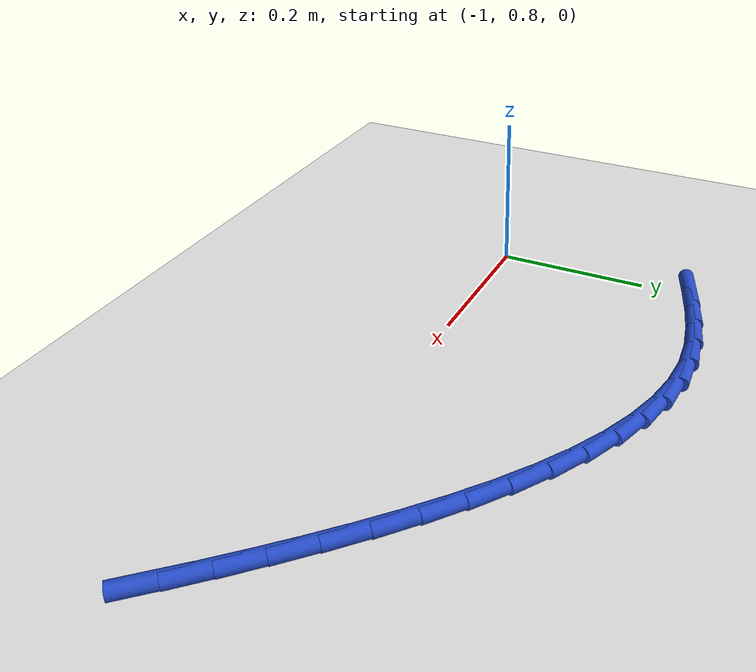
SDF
<sdf version="1.6">
 <world name="default">
  <model name="ground_plane">
   <static>1</static>
   <link name="link">
    <collision name="collision">
     <geometry><plane><normal>0 0 1</normal><size>100 100</size></plane></geometry>
     <surface><friction><ode><mu>100</mu><mu2>50</mu2></ode></friction></surface>
    </collision>
    <visual name="visual">
     <cast_shadows>0</cast_shadows>
     <geometry><plane><normal>0 0 1</normal><size>100 100</size></plane></geometry>
     <material>
      <script><uri>file://media/materials/scripts/gazebo.material</uri><name>Gazebo/WhiteGlow</name></script>
     </material>
    </visual>
   </link>
  </model>
  <model name="line">
   <link name="link_18">
    <pose>-0.2986528143183197 0.7411183380993126 0.01 0 1.57 -0.854984877392644</pose>
    <collision name="collision">
     <geometry><cylinder><radius>0.01</radius><length>0.08</length></cylinder></geometry>
    </collision>
    <visual name="visual">
     <material>
      <script><name>Gazebo/Blue</name><uri>file://media/materials/scripts/gazebo.material</uri></script>
     </material>
     <geometry><cylinder><radius>0.01</radius><length>0.08</length></cylinder></geometry>
    </visual>
   </link>
   <link name="link_19">
    <pose>-0.32948459297928206 0.7765700247198306 0.01 0 1.57 -0.8318791984274541</pose>
    <collision name="collision">
     <geometry><cylinder><radius>0.01</radius><length>0.08</length></cylinder></geometry>
    </collision>
    <visual name="visual">
     <material>
      <script><name>Gazebo/Blue</name><uri>file://media/materials/scripts/gazebo.material</uri></script>
     </material>
     <geometry><cylinder><radius>0.01</radius><length>0.08</length></cylinder></geometry>
    </visual>
   </link>
   <link name="link_20">
    <pose>-0.361604823893861 0.811824142319717 0.01 0 1.57 -0.8109976034258556</pose>
    <collision name="collision">
     <geometry><cylinder><radius>0.01</radius><length>0.08</length></cylinder></geometry>
    </collision>
    <visual name="visual">
     <material>
      <script><name>Gazebo/Blue</name><uri>file://media/materials/scripts/gazebo.material</uri></script>
     </material>
     <geometry><cylinder><radius>0.01</radius><length>0.08</length></cylinder></geometry>
    </visual>
   </link>
   <link name="link_21">
    <pose>-0.3949863238192327 0.8469600323115121 0.01 0 1.57 -0.7903148346299953</pose>
    <collision name="collision">
     <geometry><cylinder><radius>0.01</radius><length>0.08</length></cylinder></geometry>
    </collision>
    <visual name="visual">
     <material>
      <script><name>Gazebo/Blue</name><uri>file://media/materials/scripts/gazebo.material</uri></script>
     </material>
     <geometry><cylinder><radius>0.01</radius><length>0.08</length></cylinder></geometry>
    </visual>
   </link>
   <link name="link_22">
    <pose>-0.4295884818337437 0.8819041291519079 0.01 0 1.57 -0.7642693965937991</pose>
    <collision name="collision">
     <geometry><cylinder><radius>0.01</radius><length>0.08</length></cylinder></geometry>
    </collision>
    <visual name="visual">
     <material>
      <script><name>Gazebo/Blue</name><uri>file://media/materials/scripts/gazebo.material</uri></script>
     </material>
     <geometry><cylinder><radius>0.01</radius><length>0.08</length></cylinder></geometry>
    </visual>
   </link>
   <link name="link_23">
    <pose>-0.4653344864729322 0.9161706356028285 0.01 0 1.57 -0.7314331395945434</pose>
    <collision name="collision">
     <geometry><cylinder><radius>0.01</radius><length>0.08</length></cylinder></geometry>
    </collision>
    <visual name="visual">
     <material>
      <script><name>Gazebo/Blue</name><uri>file://media/materials/scripts/gazebo.material</uri></script>
     </material>
     <geometry><cylinder><radius>0.01</radius><length>0.08</length></cylinder></geometry>
    </visual>
   </link>
   <link name="link_24">
    <pose>-0.5021414870566503 0.9492049831889705 0.01 0 1.57 -0.6909779815725277</pose>
    <collision name="collision">
     <geometry><cylinder><radius>0.01</radius><length>0.08</length></cylinder></geometry>
    </collision>
    <visual name="visual">
     <material>
      <script><name>Gazebo/Blue</name><uri>file://media/materials/scripts/gazebo.material</uri></script>
     </material>
     <geometry><cylinder><radius>0.01</radius><length>0.08</length></cylinder></geometry>
    </visual>
   </link>
   <link name="link_25">
    <pose>-0.5399266329047504 0.9804526034350306 0.01 0 1.57 -0.6417780227426142</pose>
    <collision name="collision">
     <geometry><cylinder><radius>0.01</radius><length>0.08</length></cylinder></geometry>
    </collision>
    <visual name="visual">
     <material>
      <script><name>Gazebo/Blue</name><uri>file://media/materials/scripts/gazebo.material</uri></script>
     </material>
     <geometry><cylinder><radius>0.01</radius><length>0.08</length></cylinder></geometry>
    </visual>
   </link>
   <link name="link_26">
    <pose>-0.5786070733370846 1.0093589278657045 0.01 0 1.57 -0.5824050629398242</pose>
    <collision name="collision">
     <geometry><cylinder><radius>0.01</radius><length>0.08</length></cylinder></geometry>
    </collision>
    <visual name="visual">
     <material>
      <script><name>Gazebo/Blue</name><uri>file://media/materials/scripts/gazebo.material</uri></script>
     </material>
     <geometry><cylinder><radius>0.01</radius><length>0.08</length></cylinder></geometry>
    </visual>
   </link>
   <link name="link_27">
    <pose>-0.6180999576735055 1.0353693880056891 0.01 0 1.57 -0.5111588204902087</pose>
    <collision name="collision">
     <geometry><cylinder><radius>0.01</radius><length>0.08</length></cylinder></geometry>
    </collision>
    <visual name="visual">
     <material>
      <script><name>Gazebo/Blue</name><uri>file://media/materials/scripts/gazebo.material</uri></script>
     </material>
     <geometry><cylinder><radius>0.01</radius><length>0.08</length></cylinder></geometry>
    </visual>
   </link>
   <link name="link_28">
    <pose>-0.658322435233865 1.0579294153796812 0.01 0 1.57 -0.42618346433243837</pose>
    <collision name="collision">
     <geometry><cylinder><radius>0.01</radius><length>0.08</length></cylinder></geometry>
    </collision>
    <visual name="visual">
     <material>
      <script><name>Gazebo/Blue</name><uri>file://media/materials/scripts/gazebo.material</uri></script>
     </material>
     <geometry><cylinder><radius>0.01</radius><length>0.08</length></cylinder></geometry>
    </visual>
   </link>
   <link name="link_29">
    <pose>-0.6991916553380156 1.0764844415123764 0.01 0 1.57 -0.3257510978712174</pose>
    <collision name="collision">
     <geometry><cylinder><radius>0.01</radius><length>0.08</length></cylinder></geometry>
    </collision>
    <visual name="visual">
     <material>
      <script><name>Gazebo/Blue</name><uri>file://media/materials/scripts/gazebo.material</uri></script>
     </material>
     <geometry><cylinder><radius>0.01</radius><length>0.08</length></cylinder></geometry>
    </visual>
   </link>
   <link name="link_30">
    <pose>-0.7406247673058097 1.0904798979284718 0.01 0 1.57 -0.2088046056208526</pose>
    <collision name="collision">
     <geometry><cylinder><radius>0.01</radius><length>0.08</length></cylinder></geometry>
    </collision>
    <visual name="visual">
     <material>
      <script><name>Gazebo/Blue</name><uri>file://media/materials/scripts/gazebo.material</uri></script>
     </material>
     <geometry><cylinder><radius>0.01</radius><length>0.08</length></cylinder></geometry>
    </visual>
   </link>
   <link name="link_31">
    <pose>-0.7825389204570993 1.0993612161526634 0.01 0 1.57 -0.07578071122685932</pose>
    <collision name="collision">
     <geometry><cylinder><radius>0.01</radius><length>0.08</length></cylinder></geometry>
    </collision>
    <visual name="visual">
     <material>
      <script><name>Gazebo/Blue</name><uri>file://media/materials/scripts/gazebo.material</uri></script>
     </material>
     <geometry><cylinder><radius>0.01</radius><length>0.08</length></cylinder></geometry>
    </visual>
   </link>
   <link name="link_32">
    <pose>-0.8248512641117365 1.1025738277096475 0.01 0 1.57 0.06569908079968896</pose>
    <collision name="collision">
     <geometry><cylinder><radius>0.01</radius><length>0.08</length></cylinder></geometry>
    </collision>
    <visual name="visual">
     <material>
      <script><name>Gazebo/Blue</name><uri>file://media/materials/scripts/gazebo.material</uri></script>
     </material>
     <geometry><cylinder><radius>0.01</radius><length>0.08</length></cylinder></geometry>
    </visual>
   </link>
   <link name="link_33">
    <pose>-0.8674887890774303 1.099768544136677 0.01 0 1.57 0.18326894794914236</pose>
    <collision name="collision">
     <geometry><cylinder><radius>0.01</radius><length>0.08</length></cylinder></geometry>
    </collision>
    <visual name="visual">
     <material>
      <script><name>Gazebo/Blue</name><uri>file://media/materials/scripts/gazebo.material</uri></script>
     </material>
     <geometry><cylinder><radius>0.01</radius><length>0.08</length></cylinder></geometry>
    </visual>
   </link>
   <link name="link_34">
    <pose>-0.9104365657303468 1.0918082276968315 0.01 0 1.57 0.26646832312876595</pose>
    <collision name="collision">
     <geometry><cylinder><radius>0.01</radius><length>0.08</length></cylinder></geometry>
    </collision>
    <visual name="visual">
     <material>
      <script><name>Gazebo/Blue</name><uri>file://media/materials/scripts/gazebo.material</uri></script>
     </material>
     <geometry><cylinder><radius>0.01</radius><length>0.08</length></cylinder></geometry>
    </visual>
   </link>
   <link name="link_35">
    <pose>-0.9537008957044704 1.0799988114633285 0.01 0 1.57 0.3180883479107119</pose>
    <collision name="collision">
     <geometry><cylinder><radius>0.01</radius><length>0.08</length></cylinder></geometry>
    </collision>
    <visual name="visual">
     <material>
      <script><name>Gazebo/Blue</name><uri>file://media/materials/scripts/gazebo.material</uri></script>
     </material>
     <geometry><cylinder><radius>0.01</radius><length>0.08</length></cylinder></geometry>
    </visual>
   </link>
   <link name="link_36">
    <pose>-0.9972881121115185 1.06564688541178 0.01 0 1.57 0.34107186855358246</pose>
    <collision name="collision">
     <geometry><cylinder><radius>0.01</radius><length>0.08</length></cylinder></geometry>
    </collision>
    <visual name="visual">
     <material>
      <script><name>Gazebo/Blue</name><uri>file://media/materials/scripts/gazebo.material</uri></script>
     </material>
     <geometry><cylinder><radius>0.01</radius><length>0.08</length></cylinder></geometry>
    </visual>
   </link>
  </model>
 </world>
</sdf>
